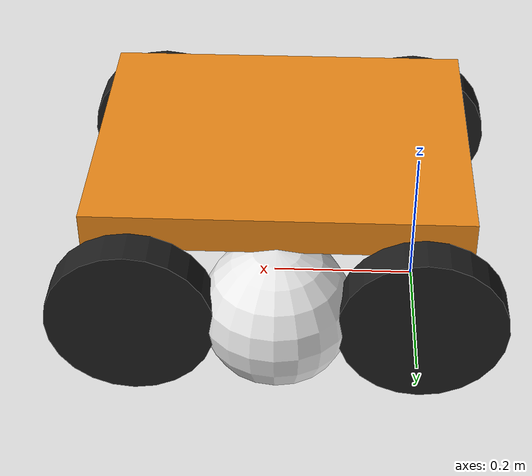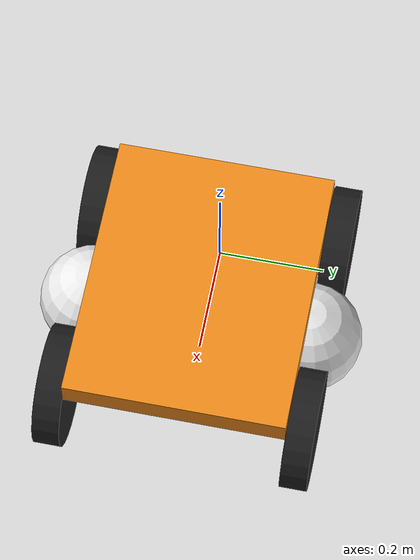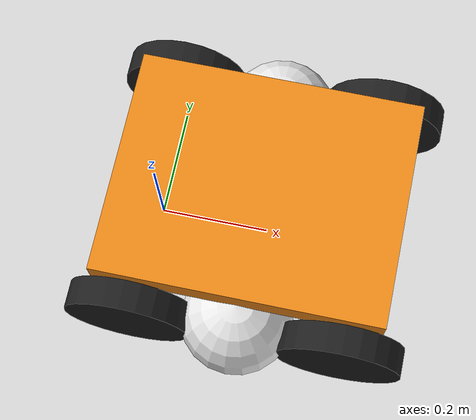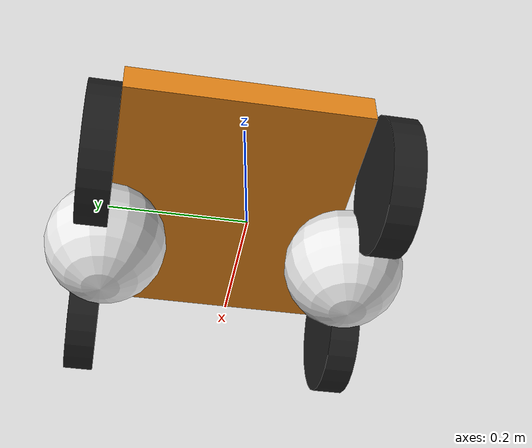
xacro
<?xml version="1.0"?>
<!-- Basic differential drive mobile base -->
<robot xmlns:xacro="http://www.ros.org/wiki/xacro" name="dumbot">

  <xacro:include filename="$(find dumbot_bringup)/urdf/roboclaw_description.urdf.xacro" />

  <!-- Import Rviz colors -->
  <xacro:include filename="$(find dumbot_bringup)/urdf/roboclaw.materials.xacro" />

  <!-- Import dumbot ros2_control description -->
  <xacro:include filename="$(find dumbot_bringup)/urdf/roboclaw.ros2_control.xacro" />

  <xacro:dumbot_base />

  <xacro:diffbot_ros2_control
  front_port="/dev/serial/by-id/usb-Basicmicro_Inc._USB_Roboclaw_2x15A_fron-if00"
  rear_port="/dev/serial/by-id/usb-Basicmicro_Inc._USB_Roboclaw_2x15A_bac-if00" />

</robot>

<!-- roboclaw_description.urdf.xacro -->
<robot xmlns:xacro="http://www.ros.org/wiki/xacro">

  <xacro:macro name="dumbot_base">

    <xacro:property name="PI" value="3.1415926535897931"/>
    <xacro:property name="base_mass" value="0.3"/>
    <xacro:property name="base_width" value="0.4"/>
    <xacro:property name="base_length" value="0.5"/>
    <xacro:property name="base_height" value="0.05"/>

    <xacro:property name="wheel_mass" value="0.3"/>
    <xacro:property name="wheel_len" value="0.050"/>
    <xacro:property name="wheel_radius" value="0.11"/>

    <xacro:property name="caster_wheel_mass" value="0.1"/>
    <xacro:property name="caster_wheel_radius" value="0.1"/>

    <!-- Front/rear wheel x positions -->
    <xacro:property name="front_wheel_x" value="0.0"/>
    <xacro:property name="rear_wheel_x" value="${3*base_length/4}"/>

    <link name="base_footprint" />

    <joint name="base_joint" type="fixed">
      <parent link="base_footprint"/>
      <child link="base_link"/>
      <origin xyz="0 0 ${wheel_radius}" rpy="0 0 0"/>
    </joint>

    <link name="base_link">
      <collision>
        <origin xyz="${3*base_length/8} 0 ${wheel_radius}" rpy="0 0 0"/>
        <geometry>
          <box size="${base_length} ${base_width} ${base_height}"/>
        </geometry>
      </collision>

      <visual>
        <origin xyz="${3*base_length/8} 0 ${wheel_radius}" rpy="0 0 0"/>
        <geometry>
          <box size="${base_length} ${base_width} ${base_height}"/>
        </geometry>
        <material name="orange"/>
      </visual>

      <inertial>
        <origin xyz="0 0 0" rpy="0 0 0"/>
        <mass value="${base_mass}"/>
        <inertia
          ixx="${base_mass / 12.0 * (base_length*base_length + base_height*base_height)}"
          ixy="0.0"
          ixz="0.0"
          iyy="${base_mass / 12.0 * (base_height*base_height + base_width*base_width)}"
          iyz="0.0"
          izz="${base_mass / 12.0 * (base_width*base_width + base_length*base_length)}"/>
      </inertial>
    </link>

    <!-- Front left wheel -->
    <joint name="front_left_wheel_joint" type="continuous">
      <parent link="base_link"/>
      <child link="front_left_wheel"/>
      <origin xyz="${front_wheel_x} ${-base_width/2 - wheel_len/2} 0" rpy="0 0 0"/>
      <axis xyz="0 1 0"/>
      <dynamics damping="0.2"/>
    </joint>

    <link name="front_left_wheel">
      <collision>
        <origin xyz="0 0 0" rpy="${PI/2} 0 0"/>
        <geometry>
          <cylinder length="${wheel_len}" radius="${wheel_radius}"/>
        </geometry>
      </collision>

      <visual>
        <origin xyz="0 0 0" rpy="${PI/2} 0 0"/>
        <geometry>
          <cylinder length="${wheel_len}" radius="${wheel_radius}"/>
        </geometry>
        <material name="black"/>
      </visual>

      <inertial>
        <origin xyz="0 0 0" rpy="${PI/2} 0 0"/>
        <mass value="${wheel_mass}"/>
        <inertia
          ixx="${wheel_mass / 12.0 * (3*wheel_radius*wheel_radius + wheel_len*wheel_len)}"
          ixy="0.0"
          ixz="0.0"
          iyy="${wheel_mass / 2.0 * wheel_radius*wheel_radius}"
          iyz="0.0"
          izz="${wheel_mass / 12.0 * (3*wheel_radius*wheel_radius + wheel_len*wheel_len)}"/>
      </inertial>
    </link>

    <!-- Front right wheel -->
    <joint name="front_right_wheel_joint" type="continuous">
      <parent link="base_link"/>
      <child link="front_right_wheel"/>
      <origin xyz="${front_wheel_x} ${base_width/2 + wheel_len/2} 0" rpy="0 0 0"/>
      <axis xyz="0 1 0"/>
      <dynamics damping="0.2"/>
    </joint>

    <link name="front_right_wheel">
      <collision>
        <origin xyz="0 0 0" rpy="${PI/2} 0 0"/>
        <geometry>
          <cylinder length="${wheel_len}" radius="${wheel_radius}"/>
        </geometry>
      </collision>

      <visual>
        <origin xyz="0 0 0" rpy="${PI/2} 0 0"/>
        <geometry>
          <cylinder length="${wheel_len}" radius="${wheel_radius}"/>
        </geometry>
        <material name="black"/>
      </visual>

      <inertial>
        <origin xyz="0 0 0" rpy="${PI/2} 0 0"/>
        <mass value="${wheel_mass}"/>
        <inertia
          ixx="${wheel_mass / 12.0 * (3*wheel_radius*wheel_radius + wheel_len*wheel_len)}"
          ixy="0.0"
          ixz="0.0"
          iyy="${wheel_mass / 2.0 * wheel_radius*wheel_radius}"
          iyz="0.0"
          izz="${wheel_mass / 12.0 * (3*wheel_radius*wheel_radius + wheel_len*wheel_len)}"/>
      </inertial>
    </link>

    <!-- Rear left wheel -->
    <joint name="rear_left_wheel_joint" type="continuous">
      <parent link="base_link"/>
      <child link="rear_left_wheel"/>
      <origin xyz="${rear_wheel_x} ${-base_width/2 - wheel_len/2} 0" rpy="0 0 0"/>
      <axis xyz="0 1 0"/>
      <dynamics damping="0.2"/>
    </joint>

    <link name="rear_left_wheel">
      <collision>
        <origin xyz="0 0 0" rpy="${PI/2} 0 0"/>
        <geometry>
          <cylinder length="${wheel_len}" radius="${wheel_radius}"/>
        </geometry>
      </collision>

      <visual>
        <origin xyz="0 0 0" rpy="${PI/2} 0 0"/>
        <geometry>
          <cylinder length="${wheel_len}" radius="${wheel_radius}"/>
        </geometry>
        <material name="black"/>
      </visual>

      <inertial>
        <origin xyz="0 0 0" rpy="${PI/2} 0 0"/>
        <mass value="${wheel_mass}"/>
        <inertia
          ixx="${wheel_mass / 12.0 * (3*wheel_radius*wheel_radius + wheel_len*wheel_len)}"
          ixy="0.0"
          ixz="0.0"
          iyy="${wheel_mass / 2.0 * wheel_radius*wheel_radius}"
          iyz="0.0"
          izz="${wheel_mass / 12.0 * (3*wheel_radius*wheel_radius + wheel_len*wheel_len)}"/>
      </inertial>
    </link>

    <!-- Rear right wheel -->
    <joint name="rear_right_wheel_joint" type="continuous">
      <parent link="base_link"/>
      <child link="rear_right_wheel"/>
      <origin xyz="${rear_wheel_x} ${base_width/2 + wheel_len/2} 0" rpy="0 0 0"/>
      <axis xyz="0 1 0"/>
      <dynamics damping="0.2"/>
    </joint>

    <link name="rear_right_wheel">
      <collision>
        <origin xyz="0 0 0" rpy="${PI/2} 0 0"/>
        <geometry>
          <cylinder length="${wheel_len}" radius="${wheel_radius}"/>
        </geometry>
      </collision>

      <visual>
        <origin xyz="0 0 0" rpy="${PI/2} 0 0"/>
        <geometry>
          <cylinder length="${wheel_len}" radius="${wheel_radius}"/>
        </geometry>
        <material name="black"/>
      </visual>

      <inertial>
        <origin xyz="0 0 0" rpy="${PI/2} 0 0"/>
        <mass value="${wheel_mass}"/>
        <inertia
          ixx="${wheel_mass / 12.0 * (3*wheel_radius*wheel_radius + wheel_len*wheel_len)}"
          ixy="0.0"
          ixz="0.0"
          iyy="${wheel_mass / 2.0 * wheel_radius*wheel_radius}"
          iyz="0.0"
          izz="${wheel_mass / 12.0 * (3*wheel_radius*wheel_radius + wheel_len*wheel_len)}"/>
      </inertial>
    </link>

    <!-- Casters -->
    <joint name="caster_left_wheel_joint" type="fixed">
      <parent link="base_link"/>
      <child link="caster_left_wheel"/>
      <origin xyz="${3*base_length/8} ${base_width/2} ${caster_wheel_radius - wheel_radius}" rpy="0 0 0"/>
    </joint>

    <link name="caster_left_wheel">
      <collision>
        <origin xyz="0 0 0" rpy="0 0 0"/>
        <geometry>
          <sphere radius="${caster_wheel_radius}"/>
        </geometry>
      </collision>

      <visual>
        <origin xyz="0 0 0" rpy="0 0 0"/>
        <geometry>
          <sphere radius="${caster_wheel_radius}"/>
        </geometry>
        <material name="white"/>
      </visual>

      <inertial>
        <origin xyz="0 0 0" rpy="0 0 0"/>
        <mass value="${caster_wheel_mass}"/>
        <inertia
          ixx="${caster_wheel_mass * 0.4 * caster_wheel_radius * caster_wheel_radius}"
          ixy="0.0"
          ixz="0.0"
          iyy="${caster_wheel_mass * 0.4 * caster_wheel_radius * caster_wheel_radius}"
          iyz="0.0"
          izz="${caster_wheel_mass * 0.4 * caster_wheel_radius * caster_wheel_radius}"/>
      </inertial>
    </link>

    <joint name="caster_right_wheel_joint" type="fixed">
      <parent link="base_link"/>
      <child link="caster_right_wheel"/>
      <origin xyz="${3*base_length/8} -${base_width/2} ${caster_wheel_radius - wheel_radius}" rpy="0 0 0"/>
    </joint>

    <link name="caster_right_wheel">
      <collision>
        <origin xyz="0 0 0" rpy="0 0 0"/>
        <geometry>
          <sphere radius="${caster_wheel_radius}"/>
        </geometry>
      </collision>

      <visual>
        <origin xyz="0 0 0" rpy="0 0 0"/>
        <geometry>
          <sphere radius="${caster_wheel_radius}"/>
        </geometry>
        <material name="white"/>
      </visual>

      <inertial>
        <origin xyz="0 0 0" rpy="0 0 0"/>
        <mass value="${caster_wheel_mass}"/>
        <inertia
          ixx="${caster_wheel_mass * 0.4 * caster_wheel_radius * caster_wheel_radius}"
          ixy="0.0"
          ixz="0.0"
          iyy="${caster_wheel_mass * 0.4 * caster_wheel_radius * caster_wheel_radius}"
          iyz="0.0"
          izz="${caster_wheel_mass * 0.4 * caster_wheel_radius * caster_wheel_radius}"/>
      </inertial>
    </link>

  </xacro:macro>

</robot>
